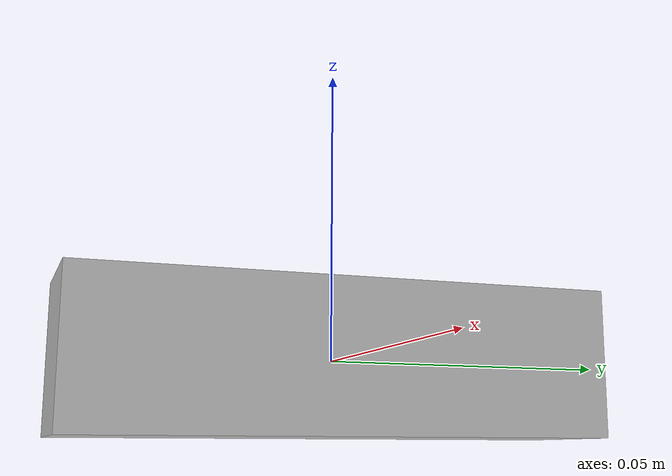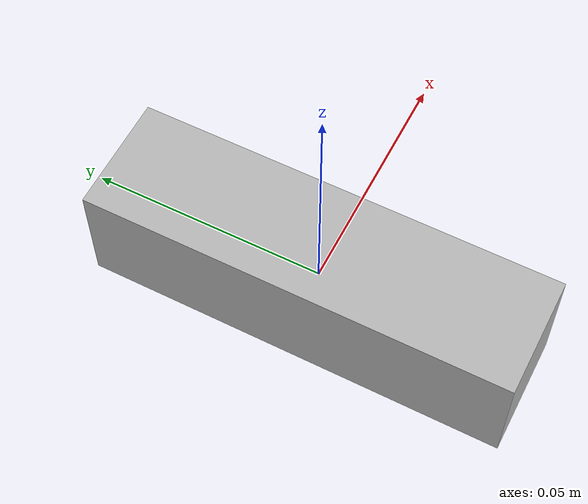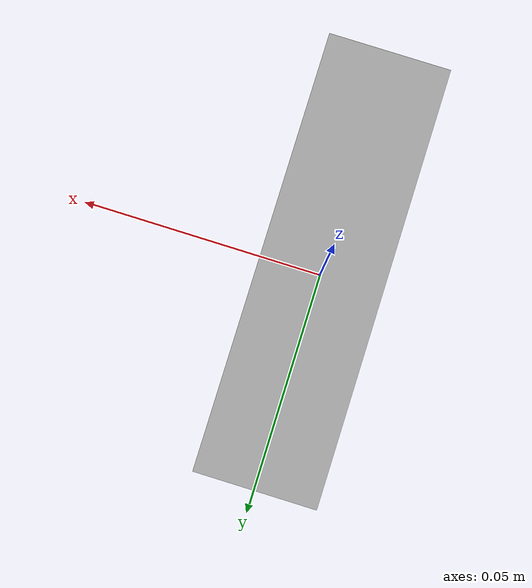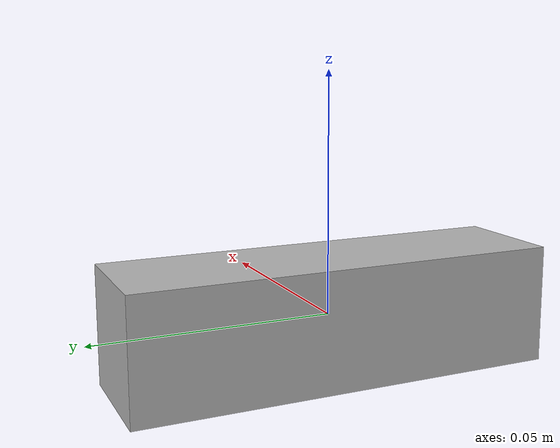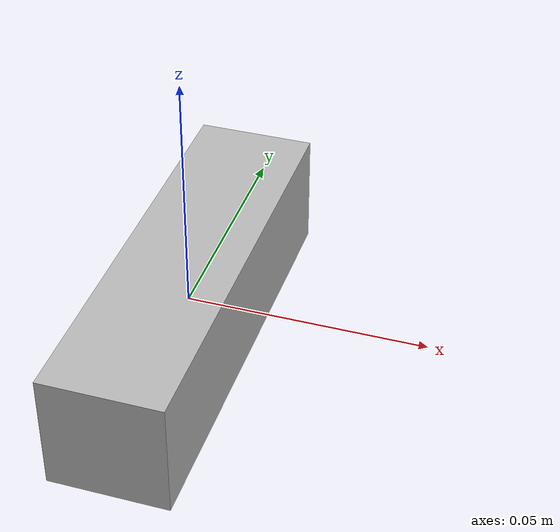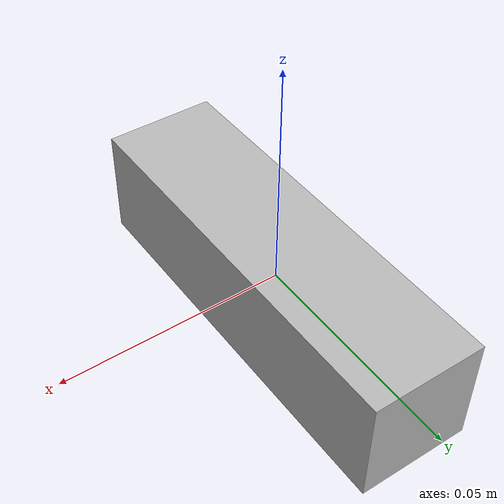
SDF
<?xml version="1.0" encoding="UTF-8"?>
<sdf version='1.9'>
  <model name='d435i'>
    <pose>0 0 0 0 0 0</pose>
    <self_collide>false</self_collide>
    <static>false</static>
    <link name="camera_link">
      <inertial>
        <mass>0.072</mass>
        <inertia>
          <ixx>0.0000524</ixx>
          <ixy>0</ixy>
          <ixz>0</ixz>
          <iyy>0.0000075</iyy>
          <iyz>0</iyz>
          <izz>0.0000524</izz>
        </inertia>
      </inertial>
      <visual name="d435i/visual">
        <geometry>
          <box>
            <size>0.025 0.090 0.025</size>
          </box>
        </geometry>
      </visual>
      <collision name="d435i/collision">
        <geometry>
          <box>
            <size>0.025 0.090 0.025</size>
          </box>
        </geometry>
      </collision>

      <sensor name="color" type="camera">
        <gz_frame_id>camera_link</gz_frame_id>
        <pose>0 0 0 0 0 0</pose>
        <camera>
          <horizontal_fov>1.204</horizontal_fov>
          <image>
            <width>640</width>
            <height>360</height>
          </image>
          <clip>
            <near>0.1</near>
            <far>100</far>
          </clip>
        </camera>
        <always_on>1</always_on>
        <update_rate>30</update_rate>
        <visualize>true</visualize>
      </sensor>

      <sensor name="depth" type="depth_camera">
        <gz_frame_id>camera_link</gz_frame_id>
        <pose>0 0 0 0 0 0</pose>
        <camera>
          <horizontal_fov>1.518</horizontal_fov>
          <image>
            <width>848</width>
            <height>480</height>
            <format>R_FLOAT32</format>
          </image>
          <clip>
            <near>0.2</near>
            <far>10.0</far>
          </clip>
        </camera>
        <always_on>1</always_on>
        <update_rate>5</update_rate>
        <visualize>true</visualize>
        <topic>depth_camera</topic>
      </sensor>

      <sensor name="imu" type="imu">
        <gz_frame_id>camera_link</gz_frame_id>
        <pose>0 0 0 0 0 0</pose>
        <always_on>1</always_on>
        <update_rate>200</update_rate>
        <imu>
          <angular_velocity>
            <x><noise type="gaussian"><mean>0.0</mean><stddev>0.0008726646</stddev></noise></x>
            <y><noise type="gaussian"><mean>0.0</mean><stddev>0.0008726646</stddev></noise></y>
            <z><noise type="gaussian"><mean>0.0</mean><stddev>0.0008726646</stddev></noise></z>
          </angular_velocity>
          <linear_acceleration>
            <x><noise type="gaussian"><mean>0.0</mean><stddev>0.00637</stddev></noise></x>
            <y><noise type="gaussian"><mean>0.0</mean><stddev>0.00637</stddev></noise></y>
            <z><noise type="gaussian"><mean>0.0</mean><stddev>0.00637</stddev></noise></z>
          </linear_acceleration>
        </imu>
      </sensor>

      <gravity>true</gravity>
      <velocity_decay />
    </link>
  </model>
</sdf>
